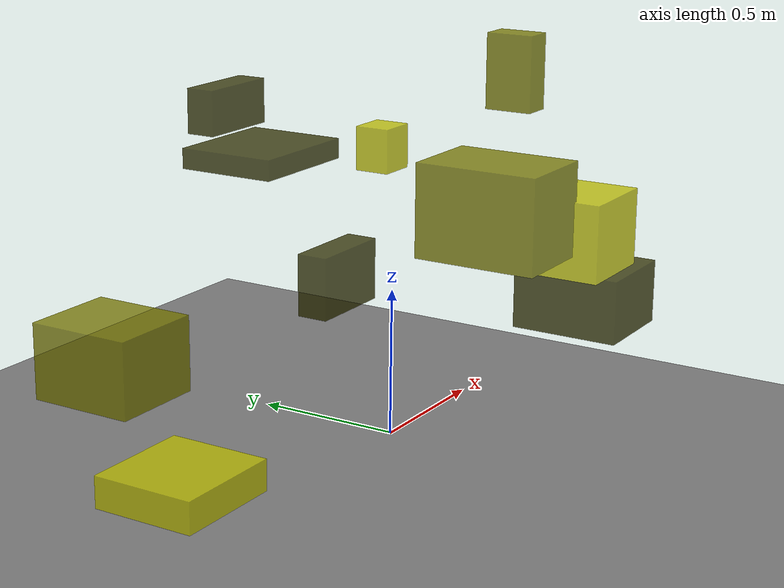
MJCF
<?xml version="1.0"?>
<mujoco model="obstacle_scene">
  <compiler angle="radian" coordinate="local"/>
  <option timestep="0.001" gravity="0 0 -9.81"/>

  <asset>
    <material name="obstacle_mat" rgba="0.8 0.8 0.0 0.8"/>
    <material name="ground_mat" rgba="0.5 0.5 0.5 1"/>
  </asset>

  <worldbody>
    <!-- Ground plane -->
    <geom name="ground" type="plane" size="3 3 0.1" material="ground_mat"/>

    <!-- Obstacles -->
    <body name="obstacle_0" pos="-0.313307 -0.824992 0.708063">
      <geom name="obs_0" type="box" size="0.133356 0.155729 0.090703" rgba="0.2 0.2 0.0 0.8"/>
    </body>
    <body name="obstacle_1" pos="-0.756743 0.557595 0.384165">
      <geom name="obs_1" type="box" size="0.161567 0.177504 0.125351" rgba="0.5 0.5 0.0 0.8"/>
    </body>
    <body name="obstacle_2" pos="-0.553240 -0.846950 0.961256">
      <geom name="obs_2" type="box" size="0.121640 0.174670 0.105716" rgba="0.8 0.8 0.0 0.8"/>
    </body>
    <body name="obstacle_3" pos="0.410987 0.477346 0.368099">
      <geom name="obs_3" type="box" size="0.166954 0.058590 0.115294" rgba="0.2 0.2 0.0 0.8"/>
    </body>
    <body name="obstacle_4" pos="-0.785446 -0.780549 1.048709">
      <geom name="obs_4" type="box" size="0.122668 0.170559 0.128105" rgba="0.5 0.5 0.0 0.8"/>
    </body>
    <body name="obstacle_5" pos="0.532320 0.365315 0.840974">
      <geom name="obs_5" type="box" size="0.070893 0.064526 0.079868" rgba="0.8 0.8 0.0 0.8"/>
    </body>
    <body name="obstacle_6" pos="-0.052187 0.479606 0.911719">
      <geom name="obs_6" type="box" size="0.205200 0.172202 0.034533" rgba="0.2 0.2 0.0 0.8"/>
    </body>
    <body name="obstacle_7" pos="0.539546 -0.154558 1.162022">
      <geom name="obs_7" type="box" size="0.051591 0.083429 0.130292" rgba="0.5 0.5 0.0 0.8"/>
    </body>
    <body name="obstacle_8" pos="-0.826447 0.243158 0.058366">
      <geom name="obs_8" type="box" size="0.194723 0.178563 0.053470" rgba="0.8 0.8 0.0 0.8"/>
    </body>
    <body name="obstacle_9" pos="0.335449 0.906721 0.965769">
      <geom name="obs_9" type="box" size="0.159372 0.054761 0.082662" rgba="0.2 0.2 0.0 0.8"/>
    </body>
  </worldbody>
</mujoco>
